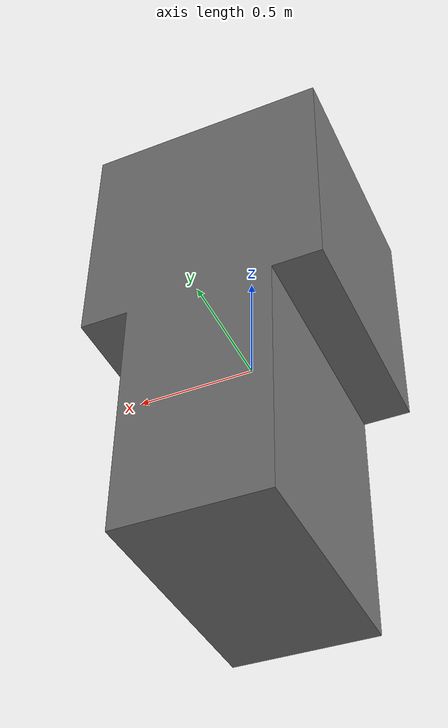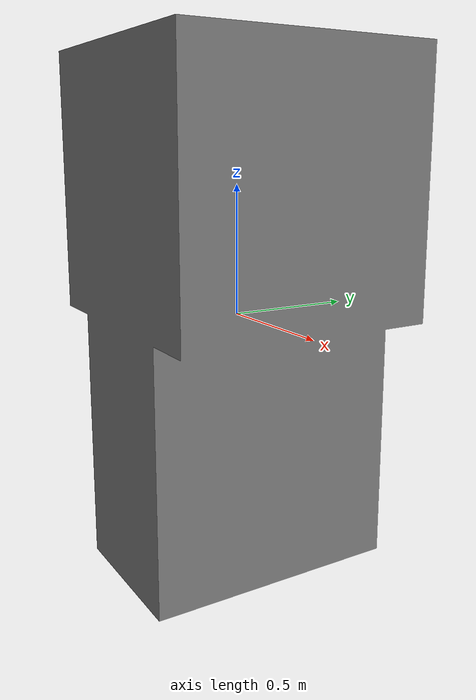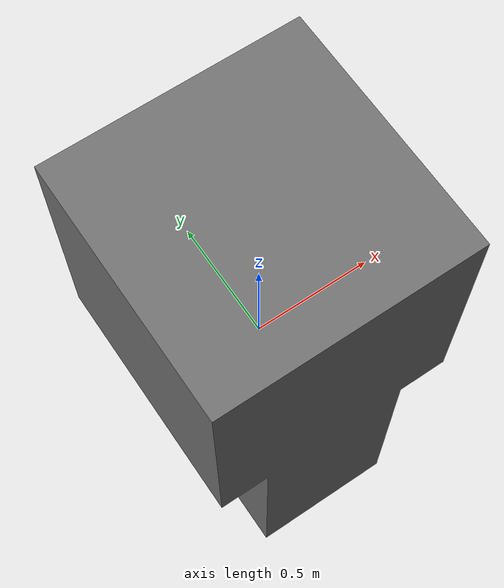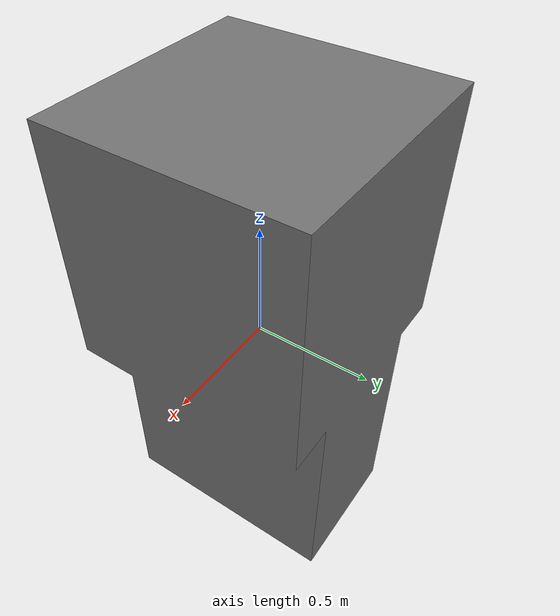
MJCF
<mujoco model="t_shape">
  <compiler angle="radian"/>
  <option timestep="0.01"/>

  <visual>
    <headlight diffuse="0.6 0.6 0.6" ambient="0.1 0.1 0.1" specular="0 0 0"/>
    <rgba haze="0.15 0.25 0.35 1"/>
    <global azimuth="120" elevation="-20"/>
  </visual>

  <asset>
    <mesh name="t_shape_mesh" file="t_shape.obj"/>
    <mesh name="t_shape_collision_mesh" file="t_shape.obj"/>
  </asset>

  <default>
    <geom condim="3" friction="1 0.5 0.01" solref="0.02 1" solimp="0.9 0.95 0.001"/>
  </default>

  <worldbody>
    <body name="t_shape" pos="0 0 0">

      <geom type="mesh" mesh="t_shape_mesh" rgba="0.45 0.45 0.45 1" contype="0" conaffinity="0" group="0"/>

      <!-- Collisions-->
      <geom name="t_shape_collision" type="mesh" mesh="t_shape_collision_mesh" pos="0 0 0" rgba="0.7 0.1 0.1 0.3" contype="1" conaffinity="1" group="3"/>

      <!-- center of the piece -->
      <site name="mount_t_shape_site" pos="0.0 0.0 0.0" size="0.005" rgba="1 0 0 1"/>

      <!-- Point 1 (index 0) -->
      <body name="point_1_traj" pos="-0.1275 -0.30 0.3775" quat="0.5 -0.5 0.5 0.5">
        <geom type="capsule" fromto="0 0 0 0.08 0 0" rgba="1 0 0 1" size="0.003" contype="0" conaffinity="0"/>
        <geom type="capsule" fromto="0 0 0 0 0.08 0" rgba="0 1 0 1" size="0.003" contype="0" conaffinity="0"/>
        <geom type="capsule" fromto="0 0 0 0 0 0.08" rgba="0 0 1 1" size="0.003" contype="0" conaffinity="0"/>
      </body>

      <!-- Point 2 (index 1) -->
      <body name="point_2_traj" pos="-0.1275 -0.30 0.126" quat="0.5 -0.5 0.5 0.5">
        <geom type="capsule" fromto="0 0 0 0.08 0 0" rgba="1 0 0 1" size="0.003" contype="0" conaffinity="0"/>
        <geom type="capsule" fromto="0 0 0 0 0.08 0" rgba="0 1 0 1" size="0.003" contype="0" conaffinity="0"/>
        <geom type="capsule" fromto="0 0 0 0 0 0.08" rgba="0 0 1 1" size="0.003" contype="0" conaffinity="0"/>
      </body>

      <!-- Point 3 (index 2) -->
      <body name="point_3_traj" pos="-0.1275 -0.30 -0.126" quat="0.5 -0.5 0.5 0.5">
        <geom type="capsule" fromto="0 0 0 0.08 0 0" rgba="1 0 0 1" size="0.003" contype="0" conaffinity="0"/>
        <geom type="capsule" fromto="0 0 0 0 0.08 0" rgba="0 1 0 1" size="0.003" contype="0" conaffinity="0"/>
        <geom type="capsule" fromto="0 0 0 0 0 0.08" rgba="0 0 1 1" size="0.003" contype="0" conaffinity="0"/>
      </body>

      <!-- Point 4 (index 3) -->
      <body name="point_4_traj" pos="-0.1275 -0.30 -0.3775" quat="0.5043 -0.5043 0.4956 0.4956">
        <geom type="capsule" fromto="0 0 0 0.08 0 0" rgba="1 0 0 1" size="0.003" contype="0" conaffinity="0"/>
        <geom type="capsule" fromto="0 0 0 0 0.08 0" rgba="0 1 0 1" size="0.003" contype="0" conaffinity="0"/>
        <geom type="capsule" fromto="0 0 0 0 0 0.08" rgba="0 0 1 1" size="0.003" contype="0" conaffinity="0"/>
      </body>

      <!-- Point 5 (index 4) -->
      <body name="point_5_traj" pos="-0.1225 -0.30 -0.412" quat="0.5661 -0.5661 0.4238 0.4238">
        <geom type="capsule" fromto="0 0 0 0.08 0 0" rgba="1 0 0 1" size="0.003" contype="0" conaffinity="0"/>
        <geom type="capsule" fromto="0 0 0 0 0.08 0" rgba="0 1 0 1" size="0.003" contype="0" conaffinity="0"/>
        <geom type="capsule" fromto="0 0 0 0 0 0.08" rgba="0 0 1 1" size="0.003" contype="0" conaffinity="0"/>
      </body>

      <!-- Point 6 (index 5) -->
      <body name="point_6_traj" pos="-0.108 -0.30 -0.4435" quat="0.6206 -0.6206 0.3389 0.3389">
        <geom type="capsule" fromto="0 0 0 0.08 0 0" rgba="1 0 0 1" size="0.003" contype="0" conaffinity="0"/>
        <geom type="capsule" fromto="0 0 0 0 0.08 0" rgba="0 1 0 1" size="0.003" contype="0" conaffinity="0"/>
        <geom type="capsule" fromto="0 0 0 0 0 0.08" rgba="0 0 1 1" size="0.003" contype="0" conaffinity="0"/>
      </body>

      <!-- Point 7 (index 6) -->
      <body name="point_7_traj" pos="-0.0855 -0.30 -0.470" quat="0.6625 -0.6625 0.2471 0.2471">
        <geom type="capsule" fromto="0 0 0 0.08 0 0" rgba="1 0 0 1" size="0.003" contype="0" conaffinity="0"/>
        <geom type="capsule" fromto="0 0 0 0 0.08 0" rgba="0 1 0 1" size="0.003" contype="0" conaffinity="0"/>
        <geom type="capsule" fromto="0 0 0 0 0 0.08" rgba="0 0 1 1" size="0.003" contype="0" conaffinity="0"/>
      </body>

      <!-- Point 8 (index 7) -->
      <body name="point_8_traj" pos="-0.056 -0.30 -0.489" quat="0.6909 -0.6909 0.1503 0.1503">
        <geom type="capsule" fromto="0 0 0 0.08 0 0" rgba="1 0 0 1" size="0.003" contype="0" conaffinity="0"/>
        <geom type="capsule" fromto="0 0 0 0 0.08 0" rgba="0 1 0 1" size="0.003" contype="0" conaffinity="0"/>
        <geom type="capsule" fromto="0 0 0 0 0 0.08" rgba="0 0 1 1" size="0.003" contype="0" conaffinity="0"/>
      </body>

      <!-- Point 9 (index 8) -->
      <body name="point_9_traj" pos="-0.0225 -0.30 -0.499" quat="0.7053 -0.7053 0.0504 0.0504">
        <geom type="capsule" fromto="0 0 0 0.08 0 0" rgba="1 0 0 1" size="0.003" contype="0" conaffinity="0"/>
        <geom type="capsule" fromto="0 0 0 0 0.08 0" rgba="0 1 0 1" size="0.003" contype="0" conaffinity="0"/>
        <geom type="capsule" fromto="0 0 0 0 0 0.08" rgba="0 0 1 1" size="0.003" contype="0" conaffinity="0"/>
      </body>

      <!-- Point 10 (index 9) -->
      <body name="point_10_traj" pos="0.0125 -0.30 -0.499" quat="0.7053 -0.7053 -0.0504 -0.0504">
        <geom type="capsule" fromto="0 0 0 0.08 0 0" rgba="1 0 0 1" size="0.003" contype="0" conaffinity="0"/>
        <geom type="capsule" fromto="0 0 0 0 0.08 0" rgba="0 1 0 1" size="0.003" contype="0" conaffinity="0"/>
        <geom type="capsule" fromto="0 0 0 0 0 0.08" rgba="0 0 1 1" size="0.003" contype="0" conaffinity="0"/>
      </body>

      <!-- Point 11 (index 10) -->
      <body name="point_11_traj" pos="0.046 -0.30 -0.489" quat="0.6909 -0.6909 -0.1503 -0.1503">
        <geom type="capsule" fromto="0 0 0 0.08 0 0" rgba="1 0 0 1" size="0.003" contype="0" conaffinity="0"/>
        <geom type="capsule" fromto="0 0 0 0 0.08 0" rgba="0 1 0 1" size="0.003" contype="0" conaffinity="0"/>
        <geom type="capsule" fromto="0 0 0 0 0 0.08" rgba="0 0 1 1" size="0.003" contype="0" conaffinity="0"/>
      </body>

      <!-- Point 12 (index 11) -->
      <body name="point_12_traj" pos="0.075 -0.30 -0.470" quat="0.6625 -0.6625 -0.2471 -0.2471">
        <geom type="capsule" fromto="0 0 0 0.08 0 0" rgba="1 0 0 1" size="0.003" contype="0" conaffinity="0"/>
        <geom type="capsule" fromto="0 0 0 0 0.08 0" rgba="0 1 0 1" size="0.003" contype="0" conaffinity="0"/>
        <geom type="capsule" fromto="0 0 0 0 0 0.08" rgba="0 0 1 1" size="0.003" contype="0" conaffinity="0"/>
      </body>

      <!-- Point 13 (index 12) -->
      <body name="point_13_traj" pos="0.098 -0.30 -0.4435" quat="0.6206 -0.6206 -0.3389 -0.3389">
        <geom type="capsule" fromto="0 0 0 0.08 0 0" rgba="1 0 0 1" size="0.003" contype="0" conaffinity="0"/>
        <geom type="capsule" fromto="0 0 0 0 0.08 0" rgba="0 1 0 1" size="0.003" contype="0" conaffinity="0"/>
        <geom type="capsule" fromto="0 0 0 0 0 0.08" rgba="0 0 1 1" size="0.003" contype="0" conaffinity="0"/>
      </body>

      <!-- Point 14 (index 13) -->
      <body name="point_14_traj" pos="0.1125 -0.30 -0.412" quat="0.5661 -0.5661 -0.4238 -0.4238">
        <geom type="capsule" fromto="0 0 0 0.08 0 0" rgba="1 0 0 1" size="0.003" contype="0" conaffinity="0"/>
        <geom type="capsule" fromto="0 0 0 0 0.08 0" rgba="0 1 0 1" size="0.003" contype="0" conaffinity="0"/>
        <geom type="capsule" fromto="0 0 0 0 0 0.08" rgba="0 0 1 1" size="0.003" contype="0" conaffinity="0"/>
      </body>

      <!-- Point 15 (index 14) -->
      <body name="point_15_traj" pos="0.1175 -0.30 -0.3775" quat="0.5043 -0.5043 -0.4956 -0.4956">
        <geom type="capsule" fromto="0 0 0 0.08 0 0" rgba="1 0 0 1" size="0.003" contype="0" conaffinity="0"/>
        <geom type="capsule" fromto="0 0 0 0 0.08 0" rgba="0 1 0 1" size="0.003" contype="0" conaffinity="0"/>
        <geom type="capsule" fromto="0 0 0 0 0 0.08" rgba="0 0 1 1" size="0.003" contype="0" conaffinity="0"/>
      </body>

      <!-- Point 16 (index 15) -->
      <body name="point_16_traj" pos="0.1175 -0.30 -0.126" quat="-0.5 0.5 0.5 0.5">
        <geom type="capsule" fromto="0 0 0 0.08 0 0" rgba="1 0 0 1" size="0.003" contype="0" conaffinity="0"/>
        <geom type="capsule" fromto="0 0 0 0 0.08 0" rgba="0 1 0 1" size="0.003" contype="0" conaffinity="0"/>
        <geom type="capsule" fromto="0 0 0 0 0 0.08" rgba="0 0 1 1" size="0.003" contype="0" conaffinity="0"/>
      </body>

      <!-- Point 17 (index 16) -->
      <body name="point_17_traj" pos="0.1175 -0.30 0.126" quat="-0.5 0.5 0.5 0.5">
        <geom type="capsule" fromto="0 0 0 0.08 0 0" rgba="1 0 0 1" size="0.003" contype="0" conaffinity="0"/>
        <geom type="capsule" fromto="0 0 0 0 0.08 0" rgba="0 1 0 1" size="0.003" contype="0" conaffinity="0"/>
        <geom type="capsule" fromto="0 0 0 0 0 0.08" rgba="0 0 1 1" size="0.003" contype="0" conaffinity="0"/>
      </body>

      <!-- Point 18 (index 17) -->
      <body name="point_18_traj" pos="0.1175 -0.30 0.3775" quat="-0.5 0.5 0.5 0.5">
        <geom type="capsule" fromto="0 0 0 0.08 0 0" rgba="1 0 0 1" size="0.003" contype="0" conaffinity="0"/>
        <geom type="capsule" fromto="0 0 0 0 0.08 0" rgba="0 1 0 1" size="0.003" contype="0" conaffinity="0"/>
        <geom type="capsule" fromto="0 0 0 0 0 0.08" rgba="0 0 1 1" size="0.003" contype="0" conaffinity="0"/>
      </body>

    </body>
  </worldbody>
</mujoco>
